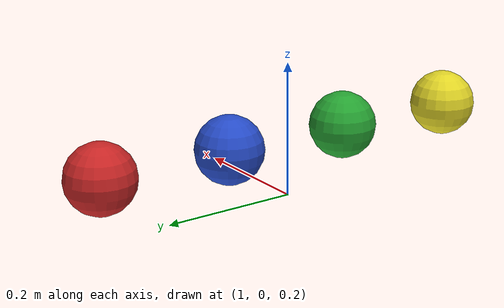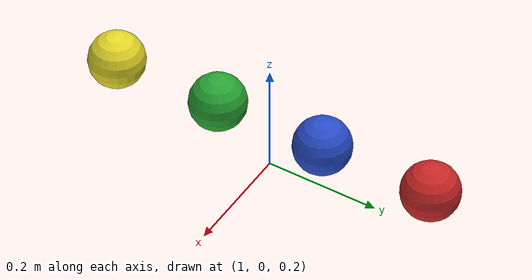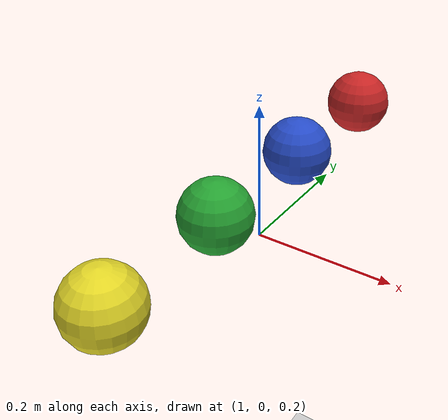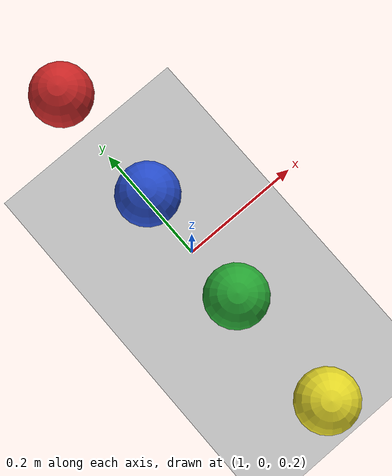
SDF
<sdf version="1.5">
 <world name="default">
  <include><uri>model://sun</uri></include>
  <include><uri>model://ground_plane</uri><pose>0 0 -0.78 0 0 0</pose></include>
  <model name="ball_blue">
   <pose>1 0.1 0.29 0 0 0</pose>
   <link name="link">
    <inertial>
     <mass>0.213</mass>
     <inertia>
      <ixx>0.00322667</ixx>
      <ixy>0</ixy>
      <ixz>0</ixz>
      <iyy>0.00322667</iyy>
      <iyz>0</iyz>
      <izz>0.00322667</izz>
     </inertia>
    </inertial>
    <visual name="visual">
     <geometry><sphere><radius>0.05</radius></sphere></geometry>
     <material>
      <script><uri>file://media/materials/scripts/gazebo.material</uri><name>Gazebo/Blue</name></script>
     </material>
    </visual>
    <collision name="collision"><geometry><sphere><radius>0.05</radius></sphere></geometry></collision>
   </link>
  </model>
  <model name="ball_red">
   <pose>1 0.3 0.29 0 0 0</pose>
   <link name="link">
    <inertial>
     <mass>0.213</mass>
     <inertia>
      <ixx>0.00322667</ixx>
      <ixy>0</ixy>
      <ixz>0</ixz>
      <iyy>0.00322667</iyy>
      <iyz>0</iyz>
      <izz>0.00322667</izz>
     </inertia>
    </inertial>
    <visual name="visual">
     <geometry><sphere><radius>0.05</radius></sphere></geometry>
     <material>
      <script><uri>file://media/materials/scripts/gazebo.material</uri><name>Gazebo/Red</name></script>
     </material>
    </visual>
    <collision name="collision"><geometry><sphere><radius>0.05</radius></sphere></geometry></collision>
   </link>
  </model>
  <model name="ball_green">
   <pose>1 -0.1 0.29 0 0 0</pose>
   <link name="link">
    <inertial>
     <mass>0.213</mass>
     <inertia>
      <ixx>0.00322667</ixx>
      <ixy>0</ixy>
      <ixz>0</ixz>
      <iyy>0.00322667</iyy>
      <iyz>0</iyz>
      <izz>0.00322667</izz>
     </inertia>
    </inertial>
    <visual name="visual">
     <geometry><sphere><radius>0.05</radius></sphere></geometry>
     <material>
      <script><uri>file://media/materials/scripts/gazebo.material</uri><name>Gazebo/Green</name></script>
     </material>
    </visual>
    <collision name="collision"><geometry><sphere><radius>0.05</radius></sphere></geometry></collision>
   </link>
  </model>
  <model name="ball_yellow">
   <pose>1 -0.3 0.29 0 0 0</pose>
   <link name="link">
    <inertial>
     <mass>0.213</mass>
     <inertia>
      <ixx>0.00322667</ixx>
      <ixy>0</ixy>
      <ixz>0</ixz>
      <iyy>0.00322667</iyy>
      <iyz>0</iyz>
      <izz>0.00322667</izz>
     </inertia>
    </inertial>
    <visual name="visual">
     <geometry><sphere><radius>0.05</radius></sphere></geometry>
     <material>
      <script><uri>file://media/materials/scripts/gazebo.material</uri><name>Gazebo/Yellow</name></script>
     </material>
    </visual>
    <collision name="collision"><geometry><sphere><radius>0.05</radius></sphere></geometry></collision>
   </link>
  </model>
 </world>
</sdf>
